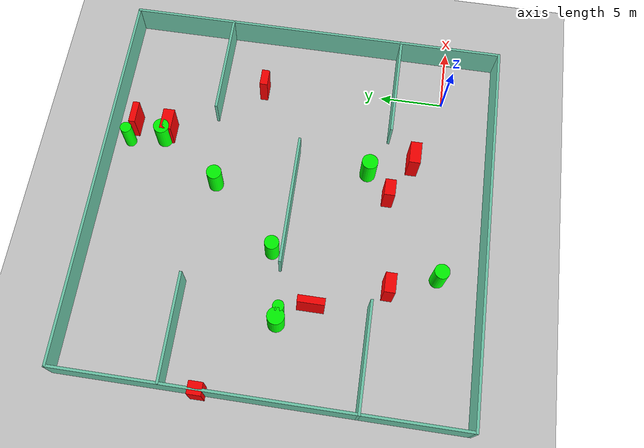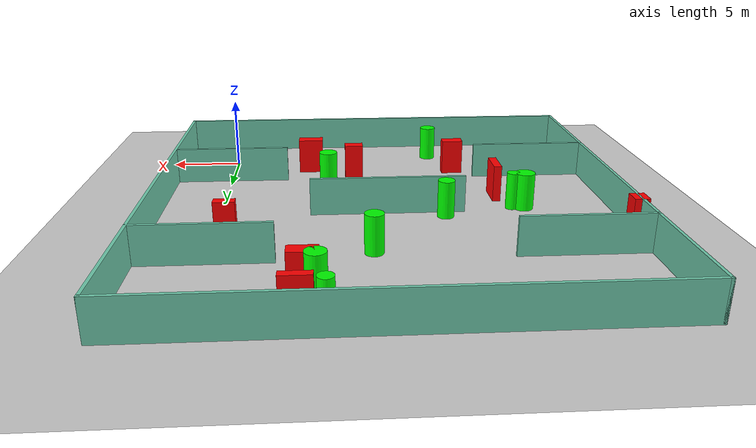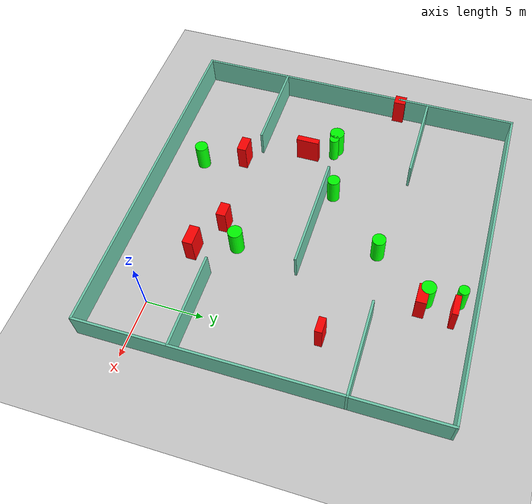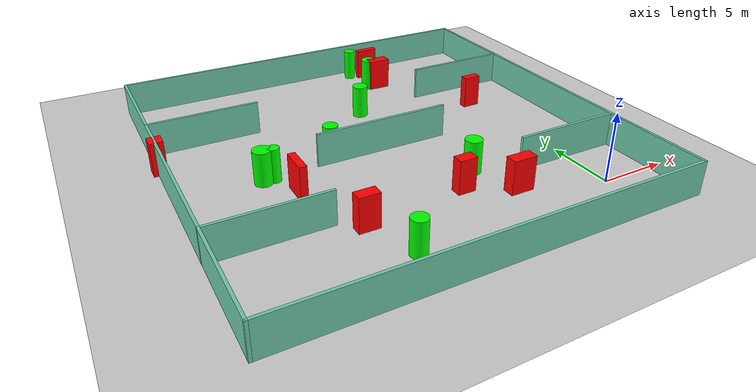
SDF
<sdf version="1.7">
 <world name="default">
  <light name="sun" type="directional">
   <pose>0 0 10 0 -0 0</pose>
   <diffuse>0.8 0.8 0.8 1</diffuse>
   <specular>0.2 0.2 0.2 1</specular>
   <attenuation>
    <range>1000</range>
    <constant>0.9</constant>
    <linear>0.01</linear>
    <quadratic>0.001</quadratic>
   </attenuation>
   <direction>-0.5 0.1 -0.9</direction>
   <spot><inner_angle>0</inner_angle><outer_angle>0</outer_angle><falloff>0</falloff></spot>
  </light>
  <model name="ground_plane">
   <static>1</static>
   <link name="link">
    <collision name="collision">
     <geometry><plane><normal>0 0 1</normal><size>100 100</size></plane></geometry>
     <surface>
      <contact><collide_bitmask>65535</collide_bitmask></contact>
      <friction><ode><mu>100</mu><mu2>50</mu2></ode></friction>
     </surface>
    </collision>
    <visual name="visual">
     <cast_shadows>0</cast_shadows>
     <geometry><plane><normal>0 0 1</normal><size>100 100</size></plane></geometry>
     <material>
      <script><uri>file://media/materials/scripts/gazebo.material</uri><name>Gazebo/Grey</name></script>
     </material>
    </visual>
   </link>
  </model>
  <gravity>0 0 -9.8</gravity>
  <magnetic_field>6e-06 2.3e-05 -4.2e-05</magnetic_field>
  <atmosphere type="adiabatic"/>
  <physics type="ode">
   <max_step_size>0.001</max_step_size>
   <real_time_factor>1</real_time_factor>
   <real_time_update_rate>1000</real_time_update_rate>
  </physics>
  <scene><ambient>0.4 0.4 0.4 1</ambient><background>0.7 0.7 0.7 1</background><shadows>1</shadows></scene>
  <spherical_coordinates>
   <surface_model>EARTH_WGS84</surface_model>
   <latitude_deg>0</latitude_deg>
   <longitude_deg>0</longitude_deg>
   <elevation>0</elevation>
   <heading_deg>0</heading_deg>
  </spherical_coordinates>
  <model name="my_base_walls">
   <link name="Wall_10">
    <collision name="Wall_10_Collision">
     <geometry><box><size>8.2 0.2 2.5</size></box></geometry>
     <pose>0 0 1.25 0 -0 0</pose>
    </collision>
    <visual name="Wall_10_Visual">
     <pose>0 0 1.25 0 -0 0</pose>
     <geometry><box><size>8.2 0.2 2.5</size></box></geometry>
     <material>
      <script><uri>file://media/materials/scripts/gazebo.material</uri><name>Gazebo/Grey</name></script>
      <ambient>0.435294 0.796078 0.67451 1</ambient>
     </material>
     <meta><layer>0</layer></meta>
    </visual>
    <pose>-11 -7 0 0 -0 0</pose>
   </link>
   <link name="Wall_12">
    <collision name="Wall_12_Collision">
     <geometry><box><size>8.2 0.2 2.5</size></box></geometry>
     <pose>0 0 1.25 0 -0 0</pose>
    </collision>
    <visual name="Wall_12_Visual">
     <pose>0 0 1.25 0 -0 0</pose>
     <geometry><box><size>8.2 0.2 2.5</size></box></geometry>
     <material>
      <script><uri>file://media/materials/scripts/gazebo.material</uri><name>Gazebo/Grey</name></script>
      <ambient>0.435294 0.796078 0.67451 1</ambient>
     </material>
     <meta><layer>0</layer></meta>
    </visual>
    <pose>-11 7 0 0 -0 0</pose>
   </link>
   <link name="Wall_14">
    <collision name="Wall_14_Collision">
     <geometry><box><size>8.2 0.2 2.5</size></box></geometry>
     <pose>0 0 1.25 0 -0 0</pose>
    </collision>
    <visual name="Wall_14_Visual">
     <pose>0 0 1.25 0 -0 0</pose>
     <geometry><box><size>8.2 0.2 2.5</size></box></geometry>
     <material>
      <script><uri>file://media/materials/scripts/gazebo.material</uri><name>Gazebo/Grey</name></script>
      <ambient>0.435294 0.796078 0.67451 1</ambient>
     </material>
     <meta><layer>0</layer></meta>
    </visual>
    <pose>11 7 0 0 -0 3.14159</pose>
   </link>
   <link name="Wall_16">
    <collision name="Wall_16_Collision">
     <geometry><box><size>10.2 0.2 2.5</size></box></geometry>
     <pose>0 0 1.25 0 -0 0</pose>
    </collision>
    <visual name="Wall_16_Visual">
     <pose>0 0 1.25 0 -0 0</pose>
     <geometry><box><size>10.2 0.2 2.5</size></box></geometry>
     <material>
      <script><uri>file://media/materials/scripts/gazebo.material</uri><name>Gazebo/Grey</name></script>
      <ambient>0.435294 0.796078 0.67451 1</ambient>
     </material>
     <meta><layer>0</layer></meta>
    </visual>
    <pose>0 0 0 0 -0 3.14159</pose>
   </link>
   <link name="Wall_2">
    <collision name="Wall_2_Collision">
     <geometry><box><size>30.2 0.2 2.5</size></box></geometry>
     <pose>0 0 1.25 0 -0 0</pose>
    </collision>
    <visual name="Wall_2_Visual">
     <pose>0 0 1.25 0 -0 0</pose>
     <geometry><box><size>30.2 0.2 2.5</size></box></geometry>
     <material>
      <script><uri>file://media/materials/scripts/gazebo.material</uri><name>Gazebo/Grey</name></script>
      <ambient>0.435294 0.796078 0.67451 1</ambient>
     </material>
     <meta><layer>0</layer></meta>
    </visual>
    <pose>0 -15 0 0 -0 3.14159</pose>
   </link>
   <link name="Wall_3">
    <collision name="Wall_3_Collision">
     <geometry><box><size>30.2 0.2 2.5</size></box></geometry>
     <pose>0 0 1.25 0 -0 0</pose>
    </collision>
    <visual name="Wall_3_Visual">
     <pose>0 0 1.25 0 -0 0</pose>
     <geometry><box><size>30.2 0.2 2.5</size></box></geometry>
     <material>
      <script><uri>file://media/materials/scripts/gazebo.material</uri><name>Gazebo/Grey</name></script>
      <ambient>0.435294 0.796078 0.67451 1</ambient>
     </material>
     <meta><layer>0</layer></meta>
    </visual>
    <pose>-15 0 0 0 -0 1.5708</pose>
   </link>
   <link name="Wall_4">
    <collision name="Wall_4_Collision">
     <geometry><box><size>30.2 0.2 2.5</size></box></geometry>
     <pose>0 0 1.25 0 -0 0</pose>
    </collision>
    <visual name="Wall_4_Visual">
     <pose>0 0 1.25 0 -0 0</pose>
     <geometry><box><size>30.2 0.2 2.5</size></box></geometry>
     <material>
      <script><uri>file://media/materials/scripts/gazebo.material</uri><name>Gazebo/Grey</name></script>
      <ambient>0.435294 0.796078 0.67451 1</ambient>
     </material>
     <meta><layer>0</layer></meta>
    </visual>
    <pose>0 15 0 0 -0 0</pose>
   </link>
   <link name="Wall_6">
    <collision name="Wall_6_Collision">
     <geometry><box><size>30.2 0.2 2.5</size></box></geometry>
     <pose>0 0 1.25 0 -0 0</pose>
    </collision>
    <visual name="Wall_6_Visual">
     <pose>0 0 1.25 0 -0 0</pose>
     <geometry><box><size>30.2 0.2 2.5</size></box></geometry>
     <material>
      <script><uri>file://media/materials/scripts/gazebo.material</uri><name>Gazebo/Grey</name></script>
      <ambient>0.435294 0.796078 0.67451 1</ambient>
     </material>
     <meta><layer>0</layer></meta>
    </visual>
    <pose>15 0 0 0 -0 1.5708</pose>
   </link>
   <link name="Wall_8">
    <collision name="Wall_8_Collision">
     <geometry><box><size>8.2 0.2 2.5</size></box></geometry>
     <pose>0 0 1.25 0 -0 0</pose>
    </collision>
    <visual name="Wall_8_Visual">
     <pose>0 0 1.25 0 -0 0</pose>
     <geometry><box><size>8.2 0.2 2.5</size></box></geometry>
     <material>
      <script><uri>file://media/materials/scripts/gazebo.material</uri><name>Gazebo/Grey</name></script>
      <ambient>0.435294 0.796078 0.67451 1</ambient>
     </material>
     <meta><layer>0</layer></meta>
    </visual>
    <pose>11 -7 0 0 -0 3.14159</pose>
   </link>
   <static>1</static>
   <pose>-11 11 0 0 -0 0</pose>
  </model>
  <model name="cylinder1">
   <static>1</static>
   <link name="link">
    <inertial>
     <mass>1</mass>
     <inertia><ixx>0.5</ixx><ixy>0</ixy><ixz>0</ixz><iyy>0.5</iyy><iyz>0</iyz><izz>1</izz></inertia>
    </inertial>
    <collision name="collision">
     <geometry><cylinder><radius>0.42371079198922323</radius><length>2.5</length></cylinder></geometry>
    </collision>
    <visual name="visual">
     <geometry><cylinder><radius>0.42371079198922323</radius><length>2.5</length></cylinder></geometry>
     <material>
      <ambient>0 1 0 1</ambient>
      <diffuse>0 1 0 1</diffuse>
      <specular>0.1 0.1 0.1 1</specular>
      <emissive>0 0 0 0</emissive>
     </material>
    </visual>
   </link>
   <pose>-19.36299873392782 10.590467097984469 1.25 0 0 0</pose>
  </model>
  <model name="cylinder2">
   <static>1</static>
   <link name="link">
    <inertial>
     <mass>1</mass>
     <inertia><ixx>0.5</ixx><ixy>0</ixy><ixz>0</ixz><iyy>0.5</iyy><iyz>0</iyz><izz>1</izz></inertia>
    </inertial>
    <collision name="collision">
     <geometry><cylinder><radius>0.5834943107838282</radius><length>2.5</length></cylinder></geometry>
    </collision>
    <visual name="visual">
     <geometry><cylinder><radius>0.5834943107838282</radius><length>2.5</length></cylinder></geometry>
     <material>
      <ambient>0 1 0 1</ambient>
      <diffuse>0 1 0 1</diffuse>
      <specular>0.1 0.1 0.1 1</specular>
      <emissive>0 0 0 0</emissive>
     </material>
    </visual>
   </link>
   <pose>-9.74749534557133 17.107314004953107 1.25 0 0 0</pose>
  </model>
  <model name="cylinder3">
   <static>1</static>
   <link name="link">
    <inertial>
     <mass>1</mass>
     <inertia><ixx>0.5</ixx><ixy>0</ixy><ixz>0</ixz><iyy>0.5</iyy><iyz>0</iyz><izz>1</izz></inertia>
    </inertial>
    <collision name="collision">
     <geometry><cylinder><radius>0.6505330207771571</radius><length>2.5</length></cylinder></geometry>
    </collision>
    <visual name="visual">
     <geometry><cylinder><radius>0.6505330207771571</radius><length>2.5</length></cylinder></geometry>
     <material>
      <ambient>0 1 0 1</ambient>
      <diffuse>0 1 0 1</diffuse>
      <specular>0.1 0.1 0.1 1</specular>
      <emissive>0 0 0 0</emissive>
     </material>
    </visual>
   </link>
   <pose>-20.136019832339507 10.66512695549654 1.25 0 0 0</pose>
  </model>
  <model name="cylinder4">
   <static>1</static>
   <link name="link">
    <inertial>
     <mass>1</mass>
     <inertia><ixx>0.5</ixx><ixy>0</ixy><ixz>0</ixz><iyy>0.5</iyy><iyz>0</iyz><izz>1</izz></inertia>
    </inertial>
    <collision name="collision">
     <geometry><cylinder><radius>0.6169818878770417</radius><length>2.5</length></cylinder></geometry>
    </collision>
    <visual name="visual">
     <geometry><cylinder><radius>0.6169818878770417</radius><length>2.5</length></cylinder></geometry>
     <material>
      <ambient>0 1 0 1</ambient>
      <diffuse>0 1 0 1</diffuse>
      <specular>0.1 0.1 0.1 1</specular>
      <emissive>0 0 0 0</emissive>
     </material>
    </visual>
   </link>
   <pose>-6.471322915122592 21.93812108930763 1.25 0 0 0</pose>
  </model>
  <model name="cylinder5">
   <static>1</static>
   <link name="link">
    <inertial>
     <mass>1</mass>
     <inertia><ixx>0.5</ixx><ixy>0</ixy><ixz>0</ixz><iyy>0.5</iyy><iyz>0</iyz><izz>1</izz></inertia>
    </inertial>
    <collision name="collision">
     <geometry><cylinder><radius>0.5715315387772074</radius><length>2.5</length></cylinder></geometry>
    </collision>
    <visual name="visual">
     <geometry><cylinder><radius>0.5715315387772074</radius><length>2.5</length></cylinder></geometry>
     <material>
      <ambient>0 1 0 1</ambient>
      <diffuse>0 1 0 1</diffuse>
      <specular>0.1 0.1 0.1 1</specular>
      <emissive>0 0 0 0</emissive>
     </material>
    </visual>
   </link>
   <pose>-15.080050641268759 -0.8170559215978161 1.25 0 0 0</pose>
  </model>
  <model name="cylinder6">
   <static>1</static>
   <link name="link">
    <inertial>
     <mass>1</mass>
     <inertia><ixx>0.5</ixx><ixy>0</ixy><ixz>0</ixz><iyy>0.5</iyy><iyz>0</iyz><izz>1</izz></inertia>
    </inertial>
    <collision name="collision">
     <geometry><cylinder><radius>0.6251676638546508</radius><length>2.5</length></cylinder></geometry>
    </collision>
    <visual name="visual">
     <geometry><cylinder><radius>0.6251676638546508</radius><length>2.5</length></cylinder></geometry>
     <material>
      <ambient>0 1 0 1</ambient>
      <diffuse>0 1 0 1</diffuse>
      <specular>0.1 0.1 0.1 1</specular>
      <emissive>0 0 0 0</emissive>
     </material>
    </visual>
   </link>
   <pose>-7.103635731187634 5.350541926139032 1.25 0 0 0</pose>
  </model>
  <model name="cylinder7">
   <static>1</static>
   <link name="link">
    <inertial>
     <mass>1</mass>
     <inertia><ixx>0.5</ixx><ixy>0</ixy><ixz>0</ixz><iyy>0.5</iyy><iyz>0</iyz><izz>1</izz></inertia>
    </inertial>
    <collision name="collision">
     <geometry><cylinder><radius>0.4510498804852971</radius><length>2.5</length></cylinder></geometry>
    </collision>
    <visual name="visual">
     <geometry><cylinder><radius>0.4510498804852971</radius><length>2.5</length></cylinder></geometry>
     <material>
      <ambient>0 1 0 1</ambient>
      <diffuse>0 1 0 1</diffuse>
      <specular>0.1 0.1 0.1 1</specular>
      <emissive>0 0 0 0</emissive>
     </material>
    </visual>
   </link>
   <pose>-7.007500074206348 24.66175586571244 1.25 0 0 0</pose>
  </model>
  <model name="cylinder8">
   <static>1</static>
   <link name="link">
    <inertial>
     <mass>1</mass>
     <inertia><ixx>0.5</ixx><ixy>0</ixy><ixz>0</ixz><iyy>0.5</iyy><iyz>0</iyz><izz>1</izz></inertia>
    </inertial>
    <collision name="collision">
     <geometry><cylinder><radius>0.549913105991864</radius><length>2.5</length></cylinder></geometry>
    </collision>
    <visual name="visual">
     <geometry><cylinder><radius>0.549913105991864</radius><length>2.5</length></cylinder></geometry>
     <material>
      <ambient>0 1 0 1</ambient>
      <diffuse>0 1 0 1</diffuse>
      <specular>0.1 0.1 0.1 1</specular>
      <emissive>0 0 0 0</emissive>
     </material>
    </visual>
   </link>
   <pose>-14.717484006520472 11.818076416000517 1.25 0 0 0</pose>
  </model>
  <model name="box1">
   <static>1</static>
   <link name="link">
    <inertial>
     <mass>1</mass>
     <inertia><ixx>0.083</ixx><ixy>0</ixy><ixz>0</ixz><iyy>0.083</iyy><iyz>0</iyz><izz>0.083</izz></inertia>
    </inertial>
    <collision name="collision">
     <geometry><box><size>1.7634612168283819 0.8780556082518594 2.5</size></box></geometry>
    </collision>
    <visual name="visual">
     <geometry><box><size>1.7634612168283819 0.8780556082518594 2.5</size></box></geometry>
     <material>
      <ambient>1 0 0 1</ambient>
      <diffuse>1 0 0 1</diffuse>
      <specular>0.1 0.1 0.1 1</specular>
      <emissive>0 0 0 0</emissive>
     </material>
    </visual>
    <sensor name="my_contact" type="contact">
     <contact><collision>box_collision</collision><topic>__default_topic__</topic></contact>
    </sensor>
   </link>
   <pose>-5.781168269260387 1.9461129683521943 1.25 0 0 0</pose>
  </model>
  <model name="box2">
   <static>1</static>
   <link name="link">
    <inertial>
     <mass>1</mass>
     <inertia><ixx>0.083</ixx><ixy>0</ixy><ixz>0</ixz><iyy>0.083</iyy><iyz>0</iyz><izz>0.083</izz></inertia>
    </inertial>
    <collision name="collision">
     <geometry><box><size>1.7518367815679647 0.5078514617848964 2.5</size></box></geometry>
    </collision>
    <visual name="visual">
     <geometry><box><size>1.7518367815679647 0.5078514617848964 2.5</size></box></geometry>
     <material>
      <ambient>1 0 0 1</ambient>
      <diffuse>1 0 0 1</diffuse>
      <specular>0.1 0.1 0.1 1</specular>
      <emissive>0 0 0 0</emissive>
     </material>
    </visual>
    <sensor name="my_contact" type="contact">
     <contact><collision>box_collision</collision><topic>__default_topic__</topic></contact>
    </sensor>
   </link>
   <pose>-5.552642121979016 24.329417413365046 1.25 0 0 0</pose>
  </model>
  <model name="box3">
   <static>1</static>
   <link name="link">
    <inertial>
     <mass>1</mass>
     <inertia><ixx>0.083</ixx><ixy>0</ixy><ixz>0</ixz><iyy>0.083</iyy><iyz>0</iyz><izz>0.083</izz></inertia>
    </inertial>
    <collision name="collision">
     <geometry><box><size>0.9486504147605204 1.0499556304896964 2.5</size></box></geometry>
    </collision>
    <visual name="visual">
     <geometry><box><size>0.9486504147605204 1.0499556304896964 2.5</size></box></geometry>
     <material>
      <ambient>1 0 0 1</ambient>
      <diffuse>1 0 0 1</diffuse>
      <specular>0.1 0.1 0.1 1</specular>
      <emissive>0 0 0 0</emissive>
     </material>
    </visual>
    <sensor name="my_contact" type="contact">
     <contact><collision>box_collision</collision><topic>__default_topic__</topic></contact>
    </sensor>
   </link>
   <pose>-25.944969869238577 15.36934939561419 1.25 0 0 0</pose>
  </model>
  <model name="box4">
   <static>1</static>
   <link name="link">
    <inertial>
     <mass>1</mass>
     <inertia><ixx>0.083</ixx><ixy>0</ixy><ixz>0</ixz><iyy>0.083</iyy><iyz>0</iyz><izz>0.083</izz></inertia>
    </inertial>
    <collision name="collision">
     <geometry><box><size>1.7185834301429233 0.8923617823426573 2.5</size></box></geometry>
    </collision>
    <visual name="visual">
     <geometry><box><size>1.7185834301429233 0.8923617823426573 2.5</size></box></geometry>
     <material>
      <ambient>1 0 0 1</ambient>
      <diffuse>1 0 0 1</diffuse>
      <specular>0.1 0.1 0.1 1</specular>
      <emissive>0 0 0 0</emissive>
     </material>
    </visual>
    <sensor name="my_contact" type="contact">
     <contact><collision>box_collision</collision><topic>__default_topic__</topic></contact>
    </sensor>
   </link>
   <pose>-5.7929633444615085 21.60354127822993 1.25 0 0 0</pose>
  </model>
  <model name="box5">
   <static>1</static>
   <link name="link">
    <inertial>
     <mass>1</mass>
     <inertia><ixx>0.083</ixx><ixy>0</ixy><ixz>0</ixz><iyy>0.083</iyy><iyz>0</iyz><izz>0.083</izz></inertia>
    </inertial>
    <collision name="collision">
     <geometry><box><size>1.5009676508663001 0.8304705365704095 2.5</size></box></geometry>
    </collision>
    <visual name="visual">
     <geometry><box><size>1.5009676508663001 0.8304705365704095 2.5</size></box></geometry>
     <material>
      <ambient>1 0 0 1</ambient>
      <diffuse>1 0 0 1</diffuse>
      <specular>0.1 0.1 0.1 1</specular>
      <emissive>0 0 0 0</emissive>
     </material>
    </visual>
    <sensor name="my_contact" type="contact">
     <contact><collision>box_collision</collision><topic>__default_topic__</topic></contact>
    </sensor>
   </link>
   <pose>-16.463354230880256 2.8091972929979523 1.25 0 0 0</pose>
  </model>
  <model name="box6">
   <static>1</static>
   <link name="link">
    <inertial>
     <mass>1</mass>
     <inertia><ixx>0.083</ixx><ixy>0</ixy><ixz>0</ixz><iyy>0.083</iyy><iyz>0</iyz><izz>0.083</izz></inertia>
    </inertial>
    <collision name="collision">
     <geometry><box><size>1.325131054826139 0.6183429687157361 2.5</size></box></geometry>
    </collision>
    <visual name="visual">
     <geometry><box><size>1.325131054826139 0.6183429687157361 2.5</size></box></geometry>
     <material>
      <ambient>1 0 0 1</ambient>
      <diffuse>1 0 0 1</diffuse>
      <specular>0.1 0.1 0.1 1</specular>
      <emissive>0 0 0 0</emissive>
     </material>
    </visual>
    <sensor name="my_contact" type="contact">
     <contact><collision>box_collision</collision><topic>__default_topic__</topic></contact>
    </sensor>
   </link>
   <pose>-0.8993996036647545 14.598747756626775 1.25 0 0 0</pose>
  </model>
  <model name="box7">
   <static>1</static>
   <link name="link">
    <inertial>
     <mass>1</mass>
     <inertia><ixx>0.083</ixx><ixy>0</ixy><ixz>0</ixz><iyy>0.083</iyy><iyz>0</iyz><izz>0.083</izz></inertia>
    </inertial>
    <collision name="collision">
     <geometry><box><size>0.5381875829224135 2.0506622626517976 2.5</size></box></geometry>
    </collision>
    <visual name="visual">
     <geometry><box><size>0.5381875829224135 2.0506622626517976 2.5</size></box></geometry>
     <material>
      <ambient>1 0 0 1</ambient>
      <diffuse>1 0 0 1</diffuse>
      <specular>0.1 0.1 0.1 1</specular>
      <emissive>0 0 0 0</emissive>
     </material>
    </visual>
    <sensor name="my_contact" type="contact">
     <contact><collision>box_collision</collision><topic>__default_topic__</topic></contact>
    </sensor>
   </link>
   <pose>-18.604172776447527 8.31431912453307 1.25 0 0 0</pose>
  </model>
  <model name="box8">
   <static>1</static>
   <link name="link">
    <inertial>
     <mass>1</mass>
     <inertia><ixx>0.083</ixx><ixy>0</ixy><ixz>0</ixz><iyy>0.083</iyy><iyz>0</iyz><izz>0.083</izz></inertia>
    </inertial>
    <collision name="collision">
     <geometry><box><size>1.3009040925075919 0.8370166775193308 2.5</size></box></geometry>
    </collision>
    <visual name="visual">
     <geometry><box><size>1.3009040925075919 0.8370166775193308 2.5</size></box></geometry>
     <material>
      <ambient>1 0 0 1</ambient>
      <diffuse>1 0 0 1</diffuse>
      <specular>0.1 0.1 0.1 1</specular>
      <emissive>0 0 0 0</emissive>
     </material>
    </visual>
    <sensor name="my_contact" type="contact">
     <contact><collision>box_collision</collision><topic>__default_topic__</topic></contact>
    </sensor>
   </link>
   <pose>-8.991289655538369 3.587891389243513 1.25 0 0 0</pose>
  </model>
 </world>
</sdf>
